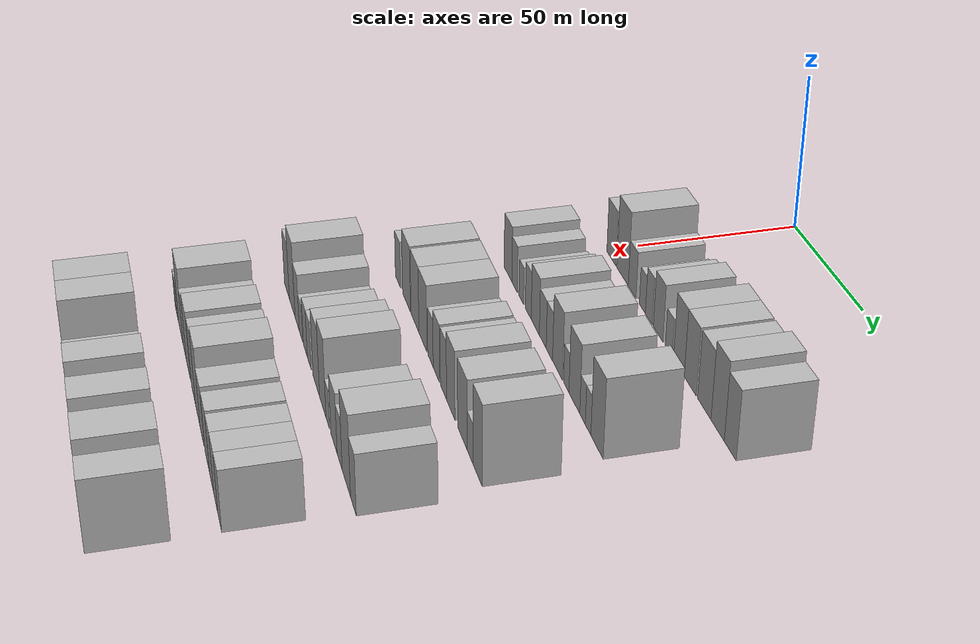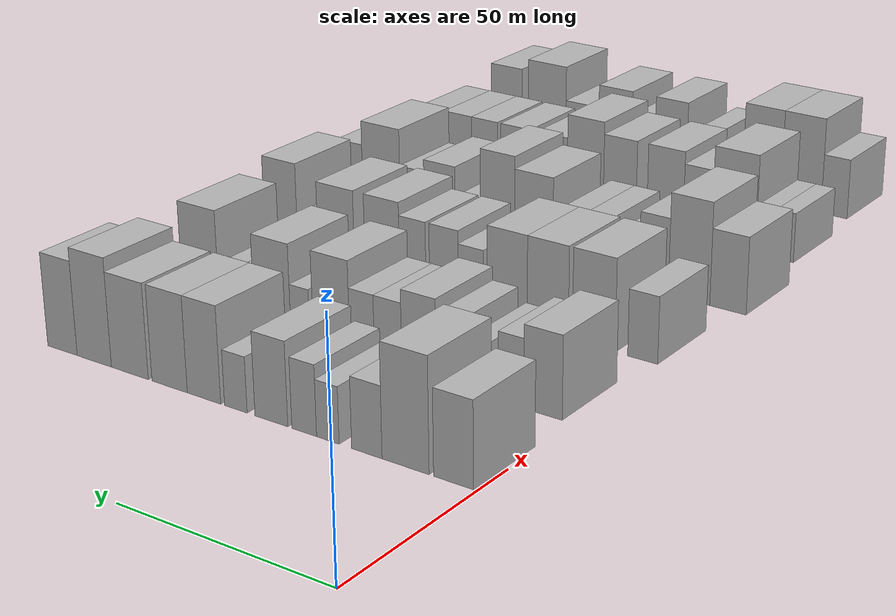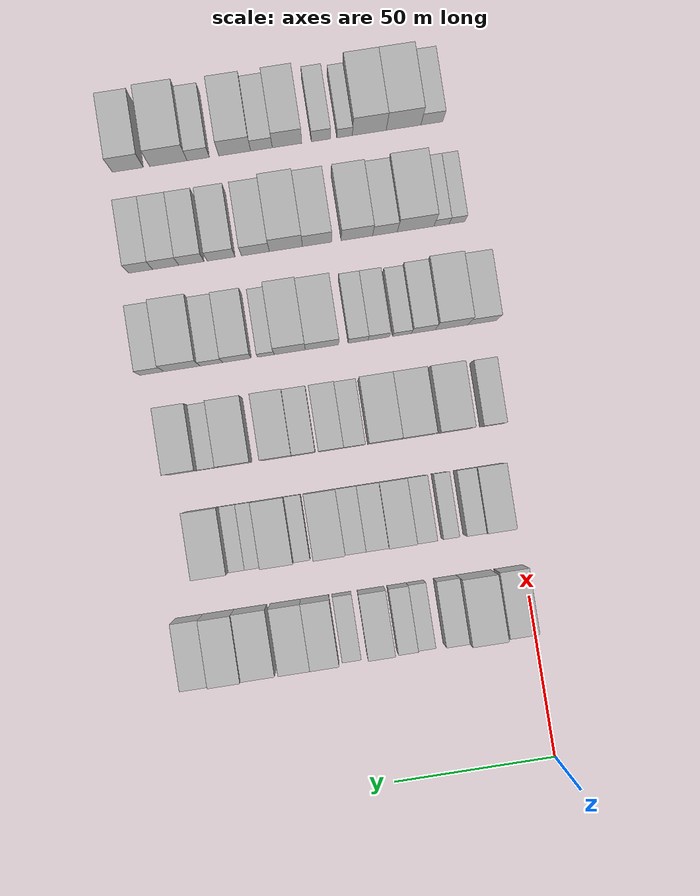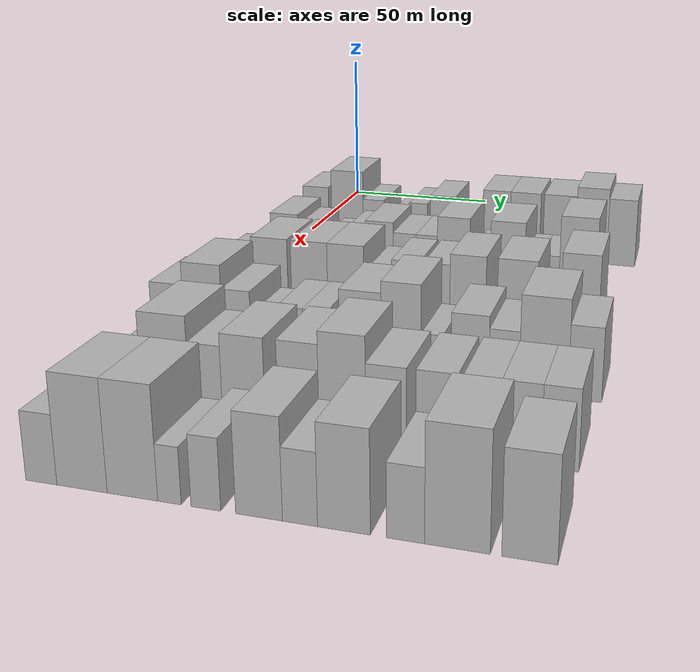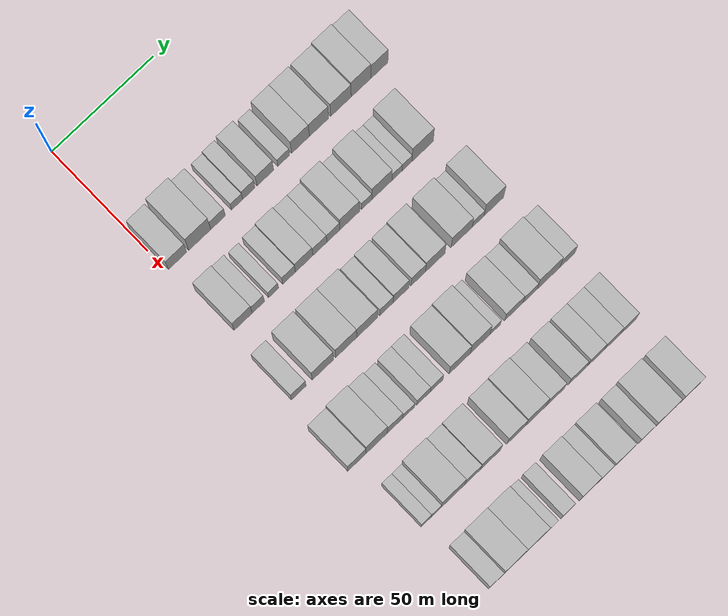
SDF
<sdf version="1.6">
 <world name="default">
  <model name="building_65">
   <static>1</static>
   <pose>50.0000 5.2108 0 0.000000 0.000000 0.000000</pose>
   <link name="link">
    <pose>0 0 9.00 0 0 0</pose>
    <collision name="collision"><geometry><box><size>20.0000 8.9175 18.0000</size></box></geometry></collision>
    <visual name="visual">
     <cast_shadows>0</cast_shadows>
     <geometry><box><size>20.0000 8.9175 18.0000</size></box></geometry>
     <material>
      <script>
       <uri>model://HANNAS_wall/materials/scripts</uri>
       <uri>model://HANNAS_wall/materials/textures</uri>
       <name>vrc/HANNAS_wall</name>
      </script>
     </material>
    </visual>
   </link>
  </model>
  <model name="building_66">
   <static>1</static>
   <pose>50.0000 16.0816 0 0.000000 0.000000 0.000000</pose>
   <link name="link">
    <pose>0 0 12.00 0 0 0</pose>
    <collision name="collision"><geometry><box><size>20.0000 10.8242 24.0000</size></box></geometry></collision>
    <visual name="visual">
     <cast_shadows>0</cast_shadows>
     <geometry><box><size>20.0000 10.8242 24.0000</size></box></geometry>
     <material>
      <script>
       <uri>model://HANNAS_wall/materials/scripts</uri>
       <uri>model://HANNAS_wall/materials/textures</uri>
       <name>vrc/HANNAS_wall</name>
      </script>
     </material>
    </visual>
   </link>
  </model>
  <model name="building_67">
   <static>1</static>
   <pose>50.0000 25.0800 0 0.000000 0.000000 0.000000</pose>
   <link name="link">
    <pose>0 0 7.50 0 0 0</pose>
    <collision name="collision"><geometry><box><size>20.0000 7.1724 15.0000</size></box></geometry></collision>
    <visual name="visual">
     <cast_shadows>0</cast_shadows>
     <geometry><box><size>20.0000 7.1724 15.0000</size></box></geometry>
     <material>
      <script>
       <uri>model://HANNAS_wall/materials/scripts</uri>
       <uri>model://HANNAS_wall/materials/textures</uri>
       <name>vrc/HANNAS_wall</name>
      </script>
     </material>
    </visual>
   </link>
  </model>
  <model name="building_68">
   <static>1</static>
   <pose>50.0000 34.4003 0 0.000000 0.000000 0.000000</pose>
   <link name="link">
    <pose>0 0 6.00 0 0 0</pose>
    <collision name="collision"><geometry><box><size>20.0000 5.4683 12.0000</size></box></geometry></collision>
    <visual name="visual">
     <cast_shadows>0</cast_shadows>
     <geometry><box><size>20.0000 5.4683 12.0000</size></box></geometry>
     <material>
      <script>
       <uri>model://HANNAS_wall/materials/scripts</uri>
       <uri>model://HANNAS_wall/materials/textures</uri>
       <name>vrc/HANNAS_wall</name>
      </script>
     </material>
    </visual>
   </link>
  </model>
  <model name="building_69">
   <static>1</static>
   <pose>50.0000 40.1698 0 0.000000 0.000000 0.000000</pose>
   <link name="link">
    <pose>0 0 7.50 0 0 0</pose>
    <collision name="collision"><geometry><box><size>20.0000 6.0707 15.0000</size></box></geometry></collision>
    <visual name="visual">
     <cast_shadows>0</cast_shadows>
     <geometry><box><size>20.0000 6.0707 15.0000</size></box></geometry>
     <material>
      <script>
       <uri>model://HANNAS_wall/materials/scripts</uri>
       <uri>model://HANNAS_wall/materials/textures</uri>
       <name>vrc/HANNAS_wall</name>
      </script>
     </material>
    </visual>
   </link>
  </model>
  <model name="building_70">
   <static>1</static>
   <pose>50.0000 48.3272 0 0.000000 0.000000 0.000000</pose>
   <link name="link">
    <pose>0 0 9.00 0 0 0</pose>
    <collision name="collision"><geometry><box><size>20.0000 8.2440 18.0000</size></box></geometry></collision>
    <visual name="visual">
     <cast_shadows>0</cast_shadows>
     <geometry><box><size>20.0000 8.2440 18.0000</size></box></geometry>
     <material>
      <script>
       <uri>model://HANNAS_wall/materials/scripts</uri>
       <uri>model://HANNAS_wall/materials/textures</uri>
       <name>vrc/HANNAS_wall</name>
      </script>
     </material>
    </visual>
   </link>
  </model>
  <model name="building_71">
   <static>1</static>
   <pose>50.0000 57.3572 0 0.000000 0.000000 0.000000</pose>
   <link name="link">
    <pose>0 0 6.00 0 0 0</pose>
    <collision name="collision"><geometry><box><size>20.0000 5.8161 12.0000</size></box></geometry></collision>
    <visual name="visual">
     <cast_shadows>0</cast_shadows>
     <geometry><box><size>20.0000 5.8161 12.0000</size></box></geometry>
     <material>
      <script>
       <uri>model://HANNAS_wall/materials/scripts</uri>
       <uri>model://HANNAS_wall/materials/textures</uri>
       <name>vrc/HANNAS_wall</name>
      </script>
     </material>
    </visual>
   </link>
  </model>
  <model name="building_72">
   <static>1</static>
   <pose>50.0000 65.6620 0 0.000000 0.000000 0.000000</pose>
   <link name="link">
    <pose>0 0 10.50 0 0 0</pose>
    <collision name="collision"><geometry><box><size>20.0000 8.7935 21.0000</size></box></geometry></collision>
    <visual name="visual">
     <cast_shadows>0</cast_shadows>
     <geometry><box><size>20.0000 8.7935 21.0000</size></box></geometry>
     <material>
      <script>
       <uri>model://HANNAS_wall/materials/scripts</uri>
       <uri>model://HANNAS_wall/materials/textures</uri>
       <name>vrc/HANNAS_wall</name>
      </script>
     </material>
    </visual>
   </link>
  </model>
  <model name="building_73">
   <static>1</static>
   <pose>50.0000 74.8261 0 0.000000 0.000000 0.000000</pose>
   <link name="link">
    <pose>0 0 10.50 0 0 0</pose>
    <collision name="collision"><geometry><box><size>20.0000 9.5347 21.0000</size></box></geometry></collision>
    <visual name="visual">
     <cast_shadows>0</cast_shadows>
     <geometry><box><size>20.0000 9.5347 21.0000</size></box></geometry>
     <material>
      <script>
       <uri>model://HANNAS_wall/materials/scripts</uri>
       <uri>model://HANNAS_wall/materials/textures</uri>
       <name>vrc/HANNAS_wall</name>
      </script>
     </material>
    </visual>
   </link>
  </model>
  <model name="building_74">
   <static>1</static>
   <pose>50.0000 85.6961 0 0.000000 0.000000 0.000000</pose>
   <link name="link">
    <pose>0 0 10.50 0 0 0</pose>
    <collision name="collision"><geometry><box><size>20.0000 10.2054 21.0000</size></box></geometry></collision>
    <visual name="visual">
     <cast_shadows>0</cast_shadows>
     <geometry><box><size>20.0000 10.2054 21.0000</size></box></geometry>
     <material>
      <script>
       <uri>model://HANNAS_wall/materials/scripts</uri>
       <uri>model://HANNAS_wall/materials/textures</uri>
       <name>vrc/HANNAS_wall</name>
      </script>
     </material>
    </visual>
   </link>
  </model>
  <model name="building_75">
   <static>1</static>
   <pose>50.0000 95.6713 0 0.000000 0.000000 0.000000</pose>
   <link name="link">
    <pose>0 0 12.00 0 0 0</pose>
    <collision name="collision"><geometry><box><size>20.0000 9.7450 24.0000</size></box></geometry></collision>
    <visual name="visual">
     <cast_shadows>0</cast_shadows>
     <geometry><box><size>20.0000 9.7450 24.0000</size></box></geometry>
     <material>
      <script>
       <uri>model://HANNAS_wall/materials/scripts</uri>
       <uri>model://HANNAS_wall/materials/textures</uri>
       <name>vrc/HANNAS_wall</name>
      </script>
     </material>
    </visual>
   </link>
  </model>
  <model name="building_76">
   <static>1</static>
   <pose>50.0000 104.8025 0 0.000000 0.000000 0.000000</pose>
   <link name="link">
    <pose>0 0 10.50 0 0 0</pose>
    <collision name="collision"><geometry><box><size>20.0000 8.5173 21.0000</size></box></geometry></collision>
    <visual name="visual">
     <cast_shadows>0</cast_shadows>
     <geometry><box><size>20.0000 8.5173 21.0000</size></box></geometry>
     <material>
      <script>
       <uri>model://HANNAS_wall/materials/scripts</uri>
       <uri>model://HANNAS_wall/materials/textures</uri>
       <name>vrc/HANNAS_wall</name>
      </script>
     </material>
    </visual>
   </link>
  </model>
  <model name="building_187">
   <static>1</static>
   <pose>82.0000 6.9125 0 0.000000 0.000000 0.000000</pose>
   <link name="link">
    <pose>0 0 9.00 0 0 0</pose>
    <collision name="collision"><geometry><box><size>20.0000 8.8993 18.0000</size></box></geometry></collision>
    <visual name="visual">
     <cast_shadows>0</cast_shadows>
     <geometry><box><size>20.0000 8.8993 18.0000</size></box></geometry>
     <material>
      <script>
       <uri>model://HANNAS_wall/materials/scripts</uri>
       <uri>model://HANNAS_wall/materials/textures</uri>
       <name>vrc/HANNAS_wall</name>
      </script>
     </material>
    </visual>
   </link>
  </model>
  <model name="building_188">
   <static>1</static>
   <pose>82.0000 14.3796 0 0.000000 0.000000 0.000000</pose>
   <link name="link">
    <pose>0 0 7.50 0 0 0</pose>
    <collision name="collision"><geometry><box><size>20.0000 6.0350 15.0000</size></box></geometry></collision>
    <visual name="visual">
     <cast_shadows>0</cast_shadows>
     <geometry><box><size>20.0000 6.0350 15.0000</size></box></geometry>
     <material>
      <script>
       <uri>model://HANNAS_wall/materials/scripts</uri>
       <uri>model://HANNAS_wall/materials/textures</uri>
       <name>vrc/HANNAS_wall</name>
      </script>
     </material>
    </visual>
   </link>
  </model>
  <model name="building_189">
   <static>1</static>
   <pose>82.0000 21.8532 0 0.000000 0.000000 0.000000</pose>
   <link name="link">
    <pose>0 0 6.00 0 0 0</pose>
    <collision name="collision"><geometry><box><size>20.0000 4.9122 12.0000</size></box></geometry></collision>
    <visual name="visual">
     <cast_shadows>0</cast_shadows>
     <geometry><box><size>20.0000 4.9122 12.0000</size></box></geometry>
     <material>
      <script>
       <uri>model://HANNAS_wall/materials/scripts</uri>
       <uri>model://HANNAS_wall/materials/textures</uri>
       <name>vrc/HANNAS_wall</name>
      </script>
     </material>
    </visual>
   </link>
  </model>
  <model name="building_190">
   <static>1</static>
   <pose>82.0000 29.4337 0 0.000000 0.000000 0.000000</pose>
   <link name="link">
    <pose>0 0 7.50 0 0 0</pose>
    <collision name="collision"><geometry><box><size>20.0000 6.2487 15.0000</size></box></geometry></collision>
    <visual name="visual">
     <cast_shadows>0</cast_shadows>
     <geometry><box><size>20.0000 6.2487 15.0000</size></box></geometry>
     <material>
      <script>
       <uri>model://HANNAS_wall/materials/scripts</uri>
       <uri>model://HANNAS_wall/materials/textures</uri>
       <name>vrc/HANNAS_wall</name>
      </script>
     </material>
    </visual>
   </link>
  </model>
  <model name="building_191">
   <static>1</static>
   <pose>82.0000 36.8371 0 0.000000 0.000000 0.000000</pose>
   <link name="link">
    <pose>0 0 9.00 0 0 0</pose>
    <collision name="collision"><geometry><box><size>20.0000 8.5582 18.0000</size></box></geometry></collision>
    <visual name="visual">
     <cast_shadows>0</cast_shadows>
     <geometry><box><size>20.0000 8.5582 18.0000</size></box></geometry>
     <material>
      <script>
       <uri>model://HANNAS_wall/materials/scripts</uri>
       <uri>model://HANNAS_wall/materials/textures</uri>
       <name>vrc/HANNAS_wall</name>
      </script>
     </material>
    </visual>
   </link>
  </model>
  <model name="building_192">
   <static>1</static>
   <pose>82.0000 44.5987 0 0.000000 0.000000 0.000000</pose>
   <link name="link">
    <pose>0 0 7.50 0 0 0</pose>
    <collision name="collision"><geometry><box><size>20.0000 6.9650 15.0000</size></box></geometry></collision>
    <visual name="visual">
     <cast_shadows>0</cast_shadows>
     <geometry><box><size>20.0000 6.9650 15.0000</size></box></geometry>
     <material>
      <script>
       <uri>model://HANNAS_wall/materials/scripts</uri>
       <uri>model://HANNAS_wall/materials/textures</uri>
       <name>vrc/HANNAS_wall</name>
      </script>
     </material>
    </visual>
   </link>
  </model>
  <model name="building_193">
   <static>1</static>
   <pose>82.0000 51.2812 0 0.000000 0.000000 0.000000</pose>
   <link name="link">
    <pose>0 0 7.50 0 0 0</pose>
    <collision name="collision"><geometry><box><size>20.0000 6.4000 15.0000</size></box></geometry></collision>
    <visual name="visual">
     <cast_shadows>0</cast_shadows>
     <geometry><box><size>20.0000 6.4000 15.0000</size></box></geometry>
     <material>
      <script>
       <uri>model://HANNAS_wall/materials/scripts</uri>
       <uri>model://HANNAS_wall/materials/textures</uri>
       <name>vrc/HANNAS_wall</name>
      </script>
     </material>
    </visual>
   </link>
  </model>
  <model name="building_194">
   <static>1</static>
   <pose>82.0000 59.3187 0 0.000000 0.000000 0.000000</pose>
   <link name="link">
    <pose>0 0 10.50 0 0 0</pose>
    <collision name="collision"><geometry><box><size>20.0000 9.6750 21.0000</size></box></geometry></collision>
    <visual name="visual">
     <cast_shadows>0</cast_shadows>
     <geometry><box><size>20.0000 9.6750 21.0000</size></box></geometry>
     <material>
      <script>
       <uri>model://HANNAS_wall/materials/scripts</uri>
       <uri>model://HANNAS_wall/materials/textures</uri>
       <name>vrc/HANNAS_wall</name>
      </script>
     </material>
    </visual>
   </link>
  </model>
  <model name="building_195">
   <static>1</static>
   <pose>82.0000 67.6902 0 0.000000 0.000000 0.000000</pose>
   <link name="link">
    <pose>0 0 6.00 0 0 0</pose>
    <collision name="collision"><geometry><box><size>20.0000 5.0679 12.0000</size></box></geometry></collision>
    <visual name="visual">
     <cast_shadows>0</cast_shadows>
     <geometry><box><size>20.0000 5.0679 12.0000</size></box></geometry>
     <material>
      <script>
       <uri>model://HANNAS_wall/materials/scripts</uri>
       <uri>model://HANNAS_wall/materials/textures</uri>
       <name>vrc/HANNAS_wall</name>
      </script>
     </material>
    </visual>
   </link>
  </model>
  <model name="building_196">
   <static>1</static>
   <pose>82.0000 75.2377 0 0.000000 0.000000 0.000000</pose>
   <link name="link">
    <pose>0 0 10.50 0 0 0</pose>
    <collision name="collision"><geometry><box><size>20.0000 10.0271 21.0000</size></box></geometry></collision>
    <visual name="visual">
     <cast_shadows>0</cast_shadows>
     <geometry><box><size>20.0000 10.0271 21.0000</size></box></geometry>
     <material>
      <script>
       <uri>model://HANNAS_wall/materials/scripts</uri>
       <uri>model://HANNAS_wall/materials/textures</uri>
       <name>vrc/HANNAS_wall</name>
      </script>
     </material>
    </visual>
   </link>
  </model>
  <model name="building_197">
   <static>1</static>
   <pose>82.0000 82.7216 0 0.000000 0.000000 0.000000</pose>
   <link name="link">
    <pose>0 0 6.00 0 0 0</pose>
    <collision name="collision"><geometry><box><size>20.0000 4.9408 12.0000</size></box></geometry></collision>
    <visual name="visual">
     <cast_shadows>0</cast_shadows>
     <geometry><box><size>20.0000 4.9408 12.0000</size></box></geometry>
     <material>
      <script>
       <uri>model://HANNAS_wall/materials/scripts</uri>
       <uri>model://HANNAS_wall/materials/textures</uri>
       <name>vrc/HANNAS_wall</name>
      </script>
     </material>
    </visual>
   </link>
  </model>
  <model name="building_198">
   <static>1</static>
   <pose>82.0000 87.6521 0 0.000000 0.000000 0.000000</pose>
   <link name="link">
    <pose>0 0 6.00 0 0 0</pose>
    <collision name="collision"><geometry><box><size>20.0000 4.9201 12.0000</size></box></geometry></collision>
    <visual name="visual">
     <cast_shadows>0</cast_shadows>
     <geometry><box><size>20.0000 4.9201 12.0000</size></box></geometry>
     <material>
      <script>
       <uri>model://HANNAS_wall/materials/scripts</uri>
       <uri>model://HANNAS_wall/materials/textures</uri>
       <name>vrc/HANNAS_wall</name>
      </script>
     </material>
    </visual>
   </link>
  </model>
  <model name="building_199">
   <static>1</static>
   <pose>82.0000 95.4035 0 0.000000 0.000000 0.000000</pose>
   <link name="link">
    <pose>0 0 12.00 0 0 0</pose>
    <collision name="collision"><geometry><box><size>20.0000 10.5827 24.0000</size></box></geometry></collision>
    <visual name="visual">
     <cast_shadows>0</cast_shadows>
     <geometry><box><size>20.0000 10.5827 24.0000</size></box></geometry>
     <material>
      <script>
       <uri>model://HANNAS_wall/materials/scripts</uri>
       <uri>model://HANNAS_wall/materials/textures</uri>
       <name>vrc/HANNAS_wall</name>
      </script>
     </material>
    </visual>
   </link>
  </model>
  <model name="building_303">
   <static>1</static>
   <pose>114.0000 3.6033 0 0.000000 0.000000 0.000000</pose>
   <link name="link">
    <pose>0 0 7.50 0 0 0</pose>
    <collision name="collision"><geometry><box><size>20.0000 7.1521 15.0000</size></box></geometry></collision>
    <visual name="visual">
     <cast_shadows>0</cast_shadows>
     <geometry><box><size>20.0000 7.1521 15.0000</size></box></geometry>
     <material>
      <script>
       <uri>model://HANNAS_wall/materials/scripts</uri>
       <uri>model://HANNAS_wall/materials/textures</uri>
       <name>vrc/HANNAS_wall</name>
      </script>
     </material>
    </visual>
   </link>
  </model>
  <model name="building_304">
   <static>1</static>
   <pose>114.0000 15.4274 0 0.000000 0.000000 0.000000</pose>
   <link name="link">
    <pose>0 0 10.50 0 0 0</pose>
    <collision name="collision"><geometry><box><size>20.0000 10.4962 21.0000</size></box></geometry></collision>
    <visual name="visual">
     <cast_shadows>0</cast_shadows>
     <geometry><box><size>20.0000 10.4962 21.0000</size></box></geometry>
     <material>
      <script>
       <uri>model://HANNAS_wall/materials/scripts</uri>
       <uri>model://HANNAS_wall/materials/textures</uri>
       <name>vrc/HANNAS_wall</name>
      </script>
     </material>
    </visual>
   </link>
  </model>
  <model name="building_305">
   <static>1</static>
   <pose>114.0000 26.8669 0 0.000000 0.000000 0.000000</pose>
   <link name="link">
    <pose>0 0 10.50 0 0 0</pose>
    <collision name="collision"><geometry><box><size>20.0000 10.3827 21.0000</size></box></geometry></collision>
    <visual name="visual">
     <cast_shadows>0</cast_shadows>
     <geometry><box><size>20.0000 10.3827 21.0000</size></box></geometry>
     <material>
      <script>
       <uri>model://HANNAS_wall/materials/scripts</uri>
       <uri>model://HANNAS_wall/materials/textures</uri>
       <name>vrc/HANNAS_wall</name>
      </script>
     </material>
    </visual>
   </link>
  </model>
  <model name="building_306">
   <static>1</static>
   <pose>114.0000 37.1920 0 0.000000 0.000000 0.000000</pose>
   <link name="link">
    <pose>0 0 10.50 0 0 0</pose>
    <collision name="collision"><geometry><box><size>20.0000 10.2676 21.0000</size></box></geometry></collision>
    <visual name="visual">
     <cast_shadows>0</cast_shadows>
     <geometry><box><size>20.0000 10.2676 21.0000</size></box></geometry>
     <material>
      <script>
       <uri>model://HANNAS_wall/materials/scripts</uri>
       <uri>model://HANNAS_wall/materials/textures</uri>
       <name>vrc/HANNAS_wall</name>
      </script>
     </material>
    </visual>
   </link>
  </model>
  <model name="building_307">
   <static>1</static>
   <pose>114.0000 46.6567 0 0.000000 0.000000 0.000000</pose>
   <link name="link">
    <pose>0 0 7.50 0 0 0</pose>
    <collision name="collision"><geometry><box><size>20.0000 6.6617 15.0000</size></box></geometry></collision>
    <visual name="visual">
     <cast_shadows>0</cast_shadows>
     <geometry><box><size>20.0000 6.6617 15.0000</size></box></geometry>
     <material>
      <script>
       <uri>model://HANNAS_wall/materials/scripts</uri>
       <uri>model://HANNAS_wall/materials/textures</uri>
       <name>vrc/HANNAS_wall</name>
      </script>
     </material>
    </visual>
   </link>
  </model>
  <model name="building_308">
   <static>1</static>
   <pose>114.0000 53.8350 0 0.000000 0.000000 0.000000</pose>
   <link name="link">
    <pose>0 0 9.00 0 0 0</pose>
    <collision name="collision"><geometry><box><size>20.0000 7.6948 18.0000</size></box></geometry></collision>
    <visual name="visual">
     <cast_shadows>0</cast_shadows>
     <geometry><box><size>20.0000 7.6948 18.0000</size></box></geometry>
     <material>
      <script>
       <uri>model://HANNAS_wall/materials/scripts</uri>
       <uri>model://HANNAS_wall/materials/textures</uri>
       <name>vrc/HANNAS_wall</name>
      </script>
     </material>
    </visual>
   </link>
  </model>
  <model name="building_309">
   <static>1</static>
   <pose>114.0000 62.2842 0 0.000000 0.000000 0.000000</pose>
   <link name="link">
    <pose>0 0 9.00 0 0 0</pose>
    <collision name="collision"><geometry><box><size>20.0000 7.2038 18.0000</size></box></geometry></collision>
    <visual name="visual">
     <cast_shadows>0</cast_shadows>
     <geometry><box><size>20.0000 7.2038 18.0000</size></box></geometry>
     <material>
      <script>
       <uri>model://HANNAS_wall/materials/scripts</uri>
       <uri>model://HANNAS_wall/materials/textures</uri>
       <name>vrc/HANNAS_wall</name>
      </script>
     </material>
    </visual>
   </link>
  </model>
  <model name="building_310">
   <static>1</static>
   <pose>114.0000 70.6869 0 0.000000 0.000000 0.000000</pose>
   <link name="link">
    <pose>0 0 10.50 0 0 0</pose>
    <collision name="collision"><geometry><box><size>20.0000 9.6014 21.0000</size></box></geometry></collision>
    <visual name="visual">
     <cast_shadows>0</cast_shadows>
     <geometry><box><size>20.0000 9.6014 21.0000</size></box></geometry>
     <material>
      <script>
       <uri>model://HANNAS_wall/materials/scripts</uri>
       <uri>model://HANNAS_wall/materials/textures</uri>
       <name>vrc/HANNAS_wall</name>
      </script>
     </material>
    </visual>
   </link>
  </model>
  <model name="building_311">
   <static>1</static>
   <pose>114.0000 83.7071 0 0.000000 0.000000 0.000000</pose>
   <link name="link">
    <pose>0 0 10.50 0 0 0</pose>
    <collision name="collision"><geometry><box><size>20.0000 10.4389 21.0000</size></box></geometry></collision>
    <visual name="visual">
     <cast_shadows>0</cast_shadows>
     <geometry><box><size>20.0000 10.4389 21.0000</size></box></geometry>
     <material>
      <script>
       <uri>model://HANNAS_wall/materials/scripts</uri>
       <uri>model://HANNAS_wall/materials/textures</uri>
       <name>vrc/HANNAS_wall</name>
      </script>
     </material>
    </visual>
   </link>
  </model>
  <model name="building_312">
   <static>1</static>
   <pose>114.0000 91.8952 0 0.000000 0.000000 0.000000</pose>
   <link name="link">
    <pose>0 0 6.00 0 0 0</pose>
    <collision name="collision"><geometry><box><size>20.0000 5.9373 12.0000</size></box></geometry></collision>
    <visual name="visual">
     <cast_shadows>0</cast_shadows>
     <geometry><box><size>20.0000 5.9373 12.0000</size></box></geometry>
     <material>
      <script>
       <uri>model://HANNAS_wall/materials/scripts</uri>
       <uri>model://HANNAS_wall/materials/textures</uri>
       <name>vrc/HANNAS_wall</name>
      </script>
     </material>
    </visual>
   </link>
  </model>
  <model name="building_313">
   <static>1</static>
   <pose>114.0000 99.7254 0 0.000000 0.000000 0.000000</pose>
   <link name="link">
    <pose>0 0 12.00 0 0 0</pose>
    <collision name="collision"><geometry><box><size>20.0000 9.7231 24.0000</size></box></geometry></collision>
    <visual name="visual">
     <cast_shadows>0</cast_shadows>
     <geometry><box><size>20.0000 9.7231 24.0000</size></box></geometry>
     <material>
      <script>
       <uri>model://HANNAS_wall/materials/scripts</uri>
       <uri>model://HANNAS_wall/materials/textures</uri>
       <name>vrc/HANNAS_wall</name>
      </script>
     </material>
    </visual>
   </link>
  </model>
  <model name="building_423">
   <static>1</static>
   <pose>146.0000 1.3149 0 0.000000 0.000000 0.000000</pose>
   <link name="link">
    <pose>0 0 9.00 0 0 0</pose>
    <collision name="collision"><geometry><box><size>20.0000 8.9159 18.0000</size></box></geometry></collision>
    <visual name="visual">
     <cast_shadows>0</cast_shadows>
     <geometry><box><size>20.0000 8.9159 18.0000</size></box></geometry>
     <material>
      <script>
       <uri>model://HANNAS_wall/materials/scripts</uri>
       <uri>model://HANNAS_wall/materials/textures</uri>
       <name>vrc/HANNAS_wall</name>
      </script>
     </material>
    </visual>
   </link>
  </model>
  <model name="building_424">
   <static>1</static>
   <pose>146.0000 10.9686 0 0.000000 0.000000 0.000000</pose>
   <link name="link">
    <pose>0 0 12.00 0 0 0</pose>
    <collision name="collision"><geometry><box><size>20.0000 10.3914 24.0000</size></box></geometry></collision>
    <visual name="visual">
     <cast_shadows>0</cast_shadows>
     <geometry><box><size>20.0000 10.3914 24.0000</size></box></geometry>
     <material>
      <script>
       <uri>model://HANNAS_wall/materials/scripts</uri>
       <uri>model://HANNAS_wall/materials/textures</uri>
       <name>vrc/HANNAS_wall</name>
      </script>
     </material>
    </visual>
   </link>
  </model>
  <model name="building_425">
   <static>1</static>
   <pose>146.0000 19.9203 0 0.000000 0.000000 0.000000</pose>
   <link name="link">
    <pose>0 0 9.00 0 0 0</pose>
    <collision name="collision"><geometry><box><size>20.0000 7.5120 18.0000</size></box></geometry></collision>
    <visual name="visual">
     <cast_shadows>0</cast_shadows>
     <geometry><box><size>20.0000 7.5120 18.0000</size></box></geometry>
     <material>
      <script>
       <uri>model://HANNAS_wall/materials/scripts</uri>
       <uri>model://HANNAS_wall/materials/textures</uri>
       <name>vrc/HANNAS_wall</name>
      </script>
     </material>
    </visual>
   </link>
  </model>
  <model name="building_426">
   <static>1</static>
   <pose>146.0000 26.6187 0 0.000000 0.000000 0.000000</pose>
   <link name="link">
    <pose>0 0 6.00 0 0 0</pose>
    <collision name="collision"><geometry><box><size>20.0000 5.8846 12.0000</size></box></geometry></collision>
    <visual name="visual">
     <cast_shadows>0</cast_shadows>
     <geometry><box><size>20.0000 5.8846 12.0000</size></box></geometry>
     <material>
      <script>
       <uri>model://HANNAS_wall/materials/scripts</uri>
       <uri>model://HANNAS_wall/materials/textures</uri>
       <name>vrc/HANNAS_wall</name>
      </script>
     </material>
    </visual>
   </link>
  </model>
  <model name="building_427">
   <static>1</static>
   <pose>146.0000 33.9033 0 0.000000 0.000000 0.000000</pose>
   <link name="link">
    <pose>0 0 7.50 0 0 0</pose>
    <collision name="collision"><geometry><box><size>20.0000 6.6847 15.0000</size></box></geometry></collision>
    <visual name="visual">
     <cast_shadows>0</cast_shadows>
     <geometry><box><size>20.0000 6.6847 15.0000</size></box></geometry>
     <material>
      <script>
       <uri>model://HANNAS_wall/materials/scripts</uri>
       <uri>model://HANNAS_wall/materials/textures</uri>
       <name>vrc/HANNAS_wall</name>
      </script>
     </material>
    </visual>
   </link>
  </model>
  <model name="building_428">
   <static>1</static>
   <pose>146.0000 40.3676 0 0.000000 0.000000 0.000000</pose>
   <link name="link">
    <pose>0 0 7.50 0 0 0</pose>
    <collision name="collision"><geometry><box><size>20.0000 6.2439 15.0000</size></box></geometry></collision>
    <visual name="visual">
     <cast_shadows>0</cast_shadows>
     <geometry><box><size>20.0000 6.2439 15.0000</size></box></geometry>
     <material>
      <script>
       <uri>model://HANNAS_wall/materials/scripts</uri>
       <uri>model://HANNAS_wall/materials/textures</uri>
       <name>vrc/HANNAS_wall</name>
      </script>
     </material>
    </visual>
   </link>
  </model>
  <model name="building_429">
   <static>1</static>
   <pose>146.0000 51.7050 0 0.000000 0.000000 0.000000</pose>
   <link name="link">
    <pose>0 0 10.50 0 0 0</pose>
    <collision name="collision"><geometry><box><size>20.0000 10.4309 21.0000</size></box></geometry></collision>
    <visual name="visual">
     <cast_shadows>0</cast_shadows>
     <geometry><box><size>20.0000 10.4309 21.0000</size></box></geometry>
     <material>
      <script>
       <uri>model://HANNAS_wall/materials/scripts</uri>
       <uri>model://HANNAS_wall/materials/textures</uri>
       <name>vrc/HANNAS_wall</name>
      </script>
     </material>
    </visual>
   </link>
  </model>
  <model name="building_430">
   <static>1</static>
   <pose>146.0000 61.7797 0 0.000000 0.000000 0.000000</pose>
   <link name="link">
    <pose>0 0 12.00 0 0 0</pose>
    <collision name="collision"><geometry><box><size>20.0000 9.7185 24.0000</size></box></geometry></collision>
    <visual name="visual">
     <cast_shadows>0</cast_shadows>
     <geometry><box><size>20.0000 9.7185 24.0000</size></box></geometry>
     <material>
      <script>
       <uri>model://HANNAS_wall/materials/scripts</uri>
       <uri>model://HANNAS_wall/materials/textures</uri>
       <name>vrc/HANNAS_wall</name>
      </script>
     </material>
    </visual>
   </link>
  </model>
  <model name="building_431">
   <static>1</static>
   <pose>146.0000 69.2442 0 0.000000 0.000000 0.000000</pose>
   <link name="link">
    <pose>0 0 6.00 0 0 0</pose>
    <collision name="collision"><geometry><box><size>20.0000 5.2106 12.0000</size></box></geometry></collision>
    <visual name="visual">
     <cast_shadows>0</cast_shadows>
     <geometry><box><size>20.0000 5.2106 12.0000</size></box></geometry>
     <material>
      <script>
       <uri>model://HANNAS_wall/materials/scripts</uri>
       <uri>model://HANNAS_wall/materials/textures</uri>
       <name>vrc/HANNAS_wall</name>
      </script>
     </material>
    </visual>
   </link>
  </model>
  <model name="building_432">
   <static>1</static>
   <pose>146.0000 78.3355 0 0.000000 0.000000 0.000000</pose>
   <link name="link">
    <pose>0 0 9.00 0 0 0</pose>
    <collision name="collision"><geometry><box><size>20.0000 8.9720 18.0000</size></box></geometry></collision>
    <visual name="visual">
     <cast_shadows>0</cast_shadows>
     <geometry><box><size>20.0000 8.9720 18.0000</size></box></geometry>
     <material>
      <script>
       <uri>model://HANNAS_wall/materials/scripts</uri>
       <uri>model://HANNAS_wall/materials/textures</uri>
       <name>vrc/HANNAS_wall</name>
      </script>
     </material>
    </visual>
   </link>
  </model>
  <model name="building_433">
   <static>1</static>
   <pose>146.0000 86.3835 0 0.000000 0.000000 0.000000</pose>
   <link name="link">
    <pose>0 0 7.50 0 0 0</pose>
    <collision name="collision"><geometry><box><size>20.0000 7.1240 15.0000</size></box></geometry></collision>
    <visual name="visual">
     <cast_shadows>0</cast_shadows>
     <geometry><box><size>20.0000 7.1240 15.0000</size></box></geometry>
     <material>
      <script>
       <uri>model://HANNAS_wall/materials/scripts</uri>
       <uri>model://HANNAS_wall/materials/textures</uri>
       <name>vrc/HANNAS_wall</name>
      </script>
     </material>
    </visual>
   </link>
  </model>
  <model name="building_434">
   <static>1</static>
   <pose>146.0000 95.5764 0 0.000000 0.000000 0.000000</pose>
   <link name="link">
    <pose>0 0 12.00 0 0 0</pose>
    <collision name="collision"><geometry><box><size>20.0000 11.2618 24.0000</size></box></geometry></collision>
    <visual name="visual">
     <cast_shadows>0</cast_shadows>
     <geometry><box><size>20.0000 11.2618 24.0000</size></box></geometry>
     <material>
      <script>
       <uri>model://HANNAS_wall/materials/scripts</uri>
       <uri>model://HANNAS_wall/materials/textures</uri>
       <name>vrc/HANNAS_wall</name>
      </script>
     </material>
    </visual>
   </link>
  </model>
  <model name="building_435">
   <static>1</static>
   <pose>146.0000 104.9927 0 0.000000 0.000000 0.000000</pose>
   <link name="link">
    <pose>0 0 9.00 0 0 0</pose>
    <collision name="collision"><geometry><box><size>20.0000 7.5709 18.0000</size></box></geometry></collision>
    <visual name="visual">
     <cast_shadows>0</cast_shadows>
     <geometry><box><size>20.0000 7.5709 18.0000</size></box></geometry>
     <material>
      <script>
       <uri>model://HANNAS_wall/materials/scripts</uri>
       <uri>model://HANNAS_wall/materials/textures</uri>
       <name>vrc/HANNAS_wall</name>
      </script>
     </material>
    </visual>
   </link>
  </model>
  <model name="building_542">
   <static>1</static>
   <pose>178.0000 4.2824 0 0.000000 0.000000 0.000000</pose>
   <link name="link">
    <pose>0 0 6.00 0 0 0</pose>
    <collision name="collision"><geometry><box><size>20.0000 4.9028 12.0000</size></box></geometry></collision>
    <visual name="visual">
     <cast_shadows>0</cast_shadows>
     <geometry><box><size>20.0000 4.9028 12.0000</size></box></geometry>
     <material>
      <script>
       <uri>model://HANNAS_wall/materials/scripts</uri>
       <uri>model://HANNAS_wall/materials/textures</uri>
       <name>vrc/HANNAS_wall</name>
      </script>
     </material>
    </visual>
   </link>
  </model>
  <model name="building_543">
   <static>1</static>
   <pose>178.0000 9.1540 0 0.000000 0.000000 0.000000</pose>
   <link name="link">
    <pose>0 0 6.00 0 0 0</pose>
    <collision name="collision"><geometry><box><size>20.0000 4.8404 12.0000</size></box></geometry></collision>
    <visual name="visual">
     <cast_shadows>0</cast_shadows>
     <geometry><box><size>20.0000 4.8404 12.0000</size></box></geometry>
     <material>
      <script>
       <uri>model://HANNAS_wall/materials/scripts</uri>
       <uri>model://HANNAS_wall/materials/textures</uri>
       <name>vrc/HANNAS_wall</name>
      </script>
     </material>
    </visual>
   </link>
  </model>
  <model name="building_544">
   <static>1</static>
   <pose>178.0000 17.3284 0 0.000000 0.000000 0.000000</pose>
   <link name="link">
    <pose>0 0 12.00 0 0 0</pose>
    <collision name="collision"><geometry><box><size>20.0000 11.5084 24.0000</size></box></geometry></collision>
    <visual name="visual">
     <cast_shadows>0</cast_shadows>
     <geometry><box><size>20.0000 11.5084 24.0000</size></box></geometry>
     <material>
      <script>
       <uri>model://HANNAS_wall/materials/scripts</uri>
       <uri>model://HANNAS_wall/materials/textures</uri>
       <name>vrc/HANNAS_wall</name>
      </script>
     </material>
    </visual>
   </link>
  </model>
  <model name="building_545">
   <static>1</static>
   <pose>178.0000 26.9547 0 0.000000 0.000000 0.000000</pose>
   <link name="link">
    <pose>0 0 9.00 0 0 0</pose>
    <collision name="collision"><geometry><box><size>20.0000 7.7442 18.0000</size></box></geometry></collision>
    <visual name="visual">
     <cast_shadows>0</cast_shadows>
     <geometry><box><size>20.0000 7.7442 18.0000</size></box></geometry>
     <material>
      <script>
       <uri>model://HANNAS_wall/materials/scripts</uri>
       <uri>model://HANNAS_wall/materials/textures</uri>
       <name>vrc/HANNAS_wall</name>
      </script>
     </material>
    </visual>
   </link>
  </model>
  <model name="building_546">
   <static>1</static>
   <pose>178.0000 35.7885 0 0.000000 0.000000 0.000000</pose>
   <link name="link">
    <pose>0 0 10.50 0 0 0</pose>
    <collision name="collision"><geometry><box><size>20.0000 9.9234 21.0000</size></box></geometry></collision>
    <visual name="visual">
     <cast_shadows>0</cast_shadows>
     <geometry><box><size>20.0000 9.9234 21.0000</size></box></geometry>
     <material>
      <script>
       <uri>model://HANNAS_wall/materials/scripts</uri>
       <uri>model://HANNAS_wall/materials/textures</uri>
       <name>vrc/HANNAS_wall</name>
      </script>
     </material>
    </visual>
   </link>
  </model>
  <model name="building_547">
   <static>1</static>
   <pose>178.0000 48.3473 0 0.000000 0.000000 0.000000</pose>
   <link name="link">
    <pose>0 0 10.50 0 0 0</pose>
    <collision name="collision"><geometry><box><size>20.0000 9.1941 21.0000</size></box></geometry></collision>
    <visual name="visual">
     <cast_shadows>0</cast_shadows>
     <geometry><box><size>20.0000 9.1941 21.0000</size></box></geometry>
     <material>
      <script>
       <uri>model://HANNAS_wall/materials/scripts</uri>
       <uri>model://HANNAS_wall/materials/textures</uri>
       <name>vrc/HANNAS_wall</name>
      </script>
     </material>
    </visual>
   </link>
  </model>
  <model name="building_548">
   <static>1</static>
   <pose>178.0000 58.1209 0 0.000000 0.000000 0.000000</pose>
   <link name="link">
    <pose>0 0 12.00 0 0 0</pose>
    <collision name="collision"><geometry><box><size>20.0000 10.3531 24.0000</size></box></geometry></collision>
    <visual name="visual">
     <cast_shadows>0</cast_shadows>
     <geometry><box><size>20.0000 10.3531 24.0000</size></box></geometry>
     <material>
      <script>
       <uri>model://HANNAS_wall/materials/scripts</uri>
       <uri>model://HANNAS_wall/materials/textures</uri>
       <name>vrc/HANNAS_wall</name>
      </script>
     </material>
    </visual>
   </link>
  </model>
  <model name="building_549">
   <static>1</static>
   <pose>178.0000 67.6942 0 0.000000 0.000000 0.000000</pose>
   <link name="link">
    <pose>0 0 9.00 0 0 0</pose>
    <collision name="collision"><geometry><box><size>20.0000 8.7935 18.0000</size></box></geometry></collision>
    <visual name="visual">
     <cast_shadows>0</cast_shadows>
     <geometry><box><size>20.0000 8.7935 18.0000</size></box></geometry>
     <material>
      <script>
       <uri>model://HANNAS_wall/materials/scripts</uri>
       <uri>model://HANNAS_wall/materials/textures</uri>
       <name>vrc/HANNAS_wall</name>
      </script>
     </material>
    </visual>
   </link>
  </model>
  <model name="building_550">
   <static>1</static>
   <pose>178.0000 78.4679 0 0.000000 0.000000 0.000000</pose>
   <link name="link">
    <pose>0 0 9.00 0 0 0</pose>
    <collision name="collision"><geometry><box><size>20.0000 8.7539 18.0000</size></box></geometry></collision>
    <visual name="visual">
     <cast_shadows>0</cast_shadows>
     <geometry><box><size>20.0000 8.7539 18.0000</size></box></geometry>
     <material>
      <script>
       <uri>model://HANNAS_wall/materials/scripts</uri>
       <uri>model://HANNAS_wall/materials/textures</uri>
       <name>vrc/HANNAS_wall</name>
      </script>
     </material>
    </visual>
   </link>
  </model>
  <model name="building_551">
   <static>1</static>
   <pose>178.0000 87.7996 0 0.000000 0.000000 0.000000</pose>
   <link name="link">
    <pose>0 0 9.00 0 0 0</pose>
    <collision name="collision"><geometry><box><size>20.0000 7.9095 18.0000</size></box></geometry></collision>
    <visual name="visual">
     <cast_shadows>0</cast_shadows>
     <geometry><box><size>20.0000 7.9095 18.0000</size></box></geometry>
     <material>
      <script>
       <uri>model://HANNAS_wall/materials/scripts</uri>
       <uri>model://HANNAS_wall/materials/textures</uri>
       <name>vrc/HANNAS_wall</name>
      </script>
     </material>
    </visual>
   </link>
  </model>
  <model name="building_552">
   <static>1</static>
   <pose>178.0000 95.9028 0 0.000000 0.000000 0.000000</pose>
   <link name="link">
    <pose>0 0 9.00 0 0 0</pose>
    <collision name="collision"><geometry><box><size>20.0000 8.2969 18.0000</size></box></geometry></collision>
    <visual name="visual">
     <cast_shadows>0</cast_shadows>
     <geometry><box><size>20.0000 8.2969 18.0000</size></box></geometry>
     <material>
      <script>
       <uri>model://HANNAS_wall/materials/scripts</uri>
       <uri>model://HANNAS_wall/materials/textures</uri>
       <name>vrc/HANNAS_wall</name>
      </script>
     </material>
    </visual>
   </link>
  </model>
  <model name="building_553">
   <static>1</static>
   <pose>178.0000 103.8064 0 0.000000 0.000000 0.000000</pose>
   <link name="link">
    <pose>0 0 9.00 0 0 0</pose>
    <collision name="collision"><geometry><box><size>20.0000 7.5103 18.0000</size></box></geometry></collision>
    <visual name="visual">
     <cast_shadows>0</cast_shadows>
     <geometry><box><size>20.0000 7.5103 18.0000</size></box></geometry>
     <material>
      <script>
       <uri>model://HANNAS_wall/materials/scripts</uri>
       <uri>model://HANNAS_wall/materials/textures</uri>
       <name>vrc/HANNAS_wall</name>
      </script>
     </material>
    </visual>
   </link>
  </model>
  <model name="building_659">
   <static>1</static>
   <pose>210.0000 7.1987 0 0.000000 0.000000 0.000000</pose>
   <link name="link">
    <pose>0 0 7.50 0 0 0</pose>
    <collision name="collision"><geometry><box><size>20.0000 6.9113 15.0000</size></box></geometry></collision>
    <visual name="visual">
     <cast_shadows>0</cast_shadows>
     <geometry><box><size>20.0000 6.9113 15.0000</size></box></geometry>
     <material>
      <script>
       <uri>model://HANNAS_wall/materials/scripts</uri>
       <uri>model://HANNAS_wall/materials/textures</uri>
       <name>vrc/HANNAS_wall</name>
      </script>
     </material>
    </visual>
   </link>
  </model>
  <model name="building_660">
   <static>1</static>
   <pose>210.0000 16.1190 0 0.000000 0.000000 0.000000</pose>
   <link name="link">
    <pose>0 0 12.00 0 0 0</pose>
    <collision name="collision"><geometry><box><size>20.0000 10.9292 24.0000</size></box></geometry></collision>
    <visual name="visual">
     <cast_shadows>0</cast_shadows>
     <geometry><box><size>20.0000 10.9292 24.0000</size></box></geometry>
     <material>
      <script>
       <uri>model://HANNAS_wall/materials/scripts</uri>
       <uri>model://HANNAS_wall/materials/textures</uri>
       <name>vrc/HANNAS_wall</name>
      </script>
     </material>
    </visual>
   </link>
  </model>
  <model name="building_661">
   <static>1</static>
   <pose>210.0000 26.9316 0 0.000000 0.000000 0.000000</pose>
   <link name="link">
    <pose>0 0 12.00 0 0 0</pose>
    <collision name="collision"><geometry><box><size>20.0000 10.6961 24.0000</size></box></geometry></collision>
    <visual name="visual">
     <cast_shadows>0</cast_shadows>
     <geometry><box><size>20.0000 10.6961 24.0000</size></box></geometry>
     <material>
      <script>
       <uri>model://HANNAS_wall/materials/scripts</uri>
       <uri>model://HANNAS_wall/materials/textures</uri>
       <name>vrc/HANNAS_wall</name>
      </script>
     </material>
    </visual>
   </link>
  </model>
  <model name="building_662">
   <static>1</static>
   <pose>210.0000 34.7196 0 0.000000 0.000000 0.000000</pose>
   <link name="link">
    <pose>0 0 6.00 0 0 0</pose>
    <collision name="collision"><geometry><box><size>20.0000 4.8799 12.0000</size></box></geometry></collision>
    <visual name="visual">
     <cast_shadows>0</cast_shadows>
     <geometry><box><size>20.0000 4.8799 12.0000</size></box></geometry>
     <material>
      <script>
       <uri>model://HANNAS_wall/materials/scripts</uri>
       <uri>model://HANNAS_wall/materials/textures</uri>
       <name>vrc/HANNAS_wall</name>
      </script>
     </material>
    </visual>
   </link>
  </model>
  <model name="building_663">
   <static>1</static>
   <pose>210.0000 42.1907 0 0.000000 0.000000 0.000000</pose>
   <link name="link">
    <pose>0 0 7.50 0 0 0</pose>
    <collision name="collision"><geometry><box><size>20.0000 6.0623 15.0000</size></box></geometry></collision>
    <visual name="visual">
     <cast_shadows>0</cast_shadows>
     <geometry><box><size>20.0000 6.0623 15.0000</size></box></geometry>
     <material>
      <script>
       <uri>model://HANNAS_wall/materials/scripts</uri>
       <uri>model://HANNAS_wall/materials/textures</uri>
       <name>vrc/HANNAS_wall</name>
      </script>
     </material>
    </visual>
   </link>
  </model>
  <model name="building_664">
   <static>1</static>
   <pose>210.0000 52.8629 0 0.000000 0.000000 0.000000</pose>
   <link name="link">
    <pose>0 0 10.50 0 0 0</pose>
    <collision name="collision"><geometry><box><size>20.0000 9.2821 21.0000</size></box></geometry></collision>
    <visual name="visual">
     <cast_shadows>0</cast_shadows>
     <geometry><box><size>20.0000 9.2821 21.0000</size></box></geometry>
     <material>
      <script>
       <uri>model://HANNAS_wall/materials/scripts</uri>
       <uri>model://HANNAS_wall/materials/textures</uri>
       <name>vrc/HANNAS_wall</name>
      </script>
     </material>
    </visual>
   </link>
  </model>
  <model name="building_665">
   <static>1</static>
   <pose>210.0000 60.9050 0 0.000000 0.000000 0.000000</pose>
   <link name="link">
    <pose>0 0 7.50 0 0 0</pose>
    <collision name="collision"><geometry><box><size>20.0000 6.8020 15.0000</size></box></geometry></collision>
    <visual name="visual">
     <cast_shadows>0</cast_shadows>
     <geometry><box><size>20.0000 6.8020 15.0000</size></box></geometry>
     <material>
      <script>
       <uri>model://HANNAS_wall/materials/scripts</uri>
       <uri>model://HANNAS_wall/materials/textures</uri>
       <name>vrc/HANNAS_wall</name>
      </script>
     </material>
    </visual>
   </link>
  </model>
  <model name="building_666">
   <static>1</static>
   <pose>210.0000 69.3189 0 0.000000 0.000000 0.000000</pose>
   <link name="link">
    <pose>0 0 10.50 0 0 0</pose>
    <collision name="collision"><geometry><box><size>20.0000 10.0259 21.0000</size></box></geometry></collision>
    <visual name="visual">
     <cast_shadows>0</cast_shadows>
     <geometry><box><size>20.0000 10.0259 21.0000</size></box></geometry>
     <material>
      <script>
       <uri>model://HANNAS_wall/materials/scripts</uri>
       <uri>model://HANNAS_wall/materials/textures</uri>
       <name>vrc/HANNAS_wall</name>
      </script>
     </material>
    </visual>
   </link>
  </model>
  <model name="building_667">
   <static>1</static>
   <pose>210.0000 80.8434 0 0.000000 0.000000 0.000000</pose>
   <link name="link">
    <pose>0 0 7.50 0 0 0</pose>
    <collision name="collision"><geometry><box><size>20.0000 7.0230 15.0000</size></box></geometry></collision>
    <visual name="visual">
     <cast_shadows>0</cast_shadows>
     <geometry><box><size>20.0000 7.0230 15.0000</size></box></geometry>
     <material>
      <script>
       <uri>model://HANNAS_wall/materials/scripts</uri>
       <uri>model://HANNAS_wall/materials/textures</uri>
       <name>vrc/HANNAS_wall</name>
      </script>
     </material>
    </visual>
   </link>
  </model>
  <model name="building_668">
   <static>1</static>
   <pose>210.0000 90.2472 0 0.000000 0.000000 0.000000</pose>
   <link name="link">
    <pose>0 0 12.00 0 0 0</pose>
    <collision name="collision"><geometry><box><size>20.0000 11.7845 24.0000</size></box></geometry></collision>
    <visual name="visual">
     <cast_shadows>0</cast_shadows>
     <geometry><box><size>20.0000 11.7845 24.0000</size></box></geometry>
     <material>
      <script>
       <uri>model://HANNAS_wall/materials/scripts</uri>
       <uri>model://HANNAS_wall/materials/textures</uri>
       <name>vrc/HANNAS_wall</name>
      </script>
     </material>
    </visual>
   </link>
  </model>
  <model name="building_669">
   <static>1</static>
   <pose>210.0000 103.0103 0 0.000000 0.000000 0.000000</pose>
   <link name="link">
    <pose>0 0 10.50 0 0 0</pose>
    <collision name="collision"><geometry><box><size>20.0000 9.7417 21.0000</size></box></geometry></collision>
    <visual name="visual">
     <cast_shadows>0</cast_shadows>
     <geometry><box><size>20.0000 9.7417 21.0000</size></box></geometry>
     <material>
      <script>
       <uri>model://HANNAS_wall/materials/scripts</uri>
       <uri>model://HANNAS_wall/materials/textures</uri>
       <name>vrc/HANNAS_wall</name>
      </script>
     </material>
    </visual>
   </link>
  </model>
 </world>
</sdf>
